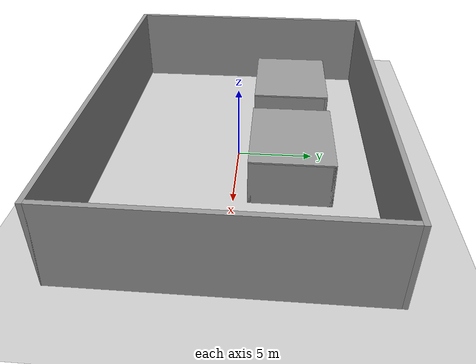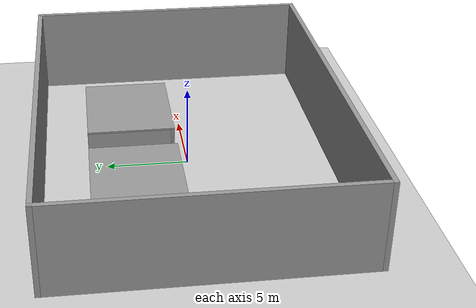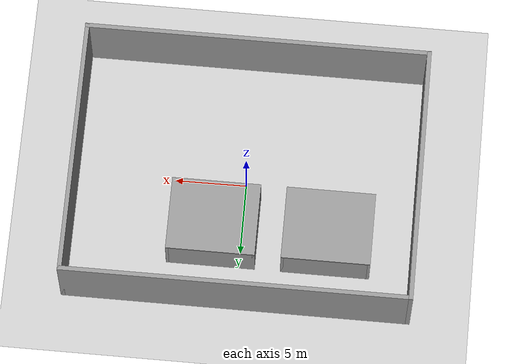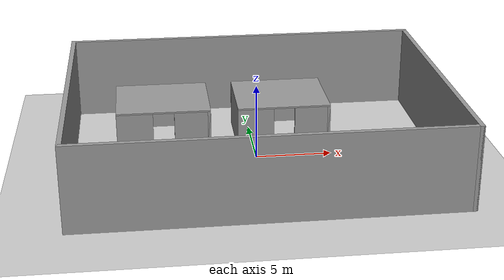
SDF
<sdf version="1.6">
 <world name="slam_world">
  <physics type="ode">
   <max_step_size>0.001</max_step_size>
   <real_time_factor>1.0</real_time_factor>
   <real_time_update_rate>1000.0</real_time_update_rate>
  </physics>
  <scene>
   <ambient>0.6 0.6 0.6 1.0</ambient>
   <background>0.1 0.1 0.1 1.0</background>
   <shadows>true</shadows>
  </scene>
  <include><uri>model://sun</uri></include>
  <include><uri>model://ground_plane</uri></include>
  <model name="room1_overhead_camera">
   <static>true</static>
   <pose>-6.0 3.5 3.0 0 1.5708 1.5708</pose>
   <link name="room1_camera_link">
    <sensor type="depth" name="room1_depth_camera">
     <always_on>true</always_on>
     <update_rate>30.0</update_rate>
     <camera>
      <horizontal_fov>2.0</horizontal_fov>
      <image><width>1280</width><height>720</height><format>R8G8B8</format></image>
      <clip><near>0.1</near><far>10.0</far></clip>
     </camera>
     <plugin name="room1_camera_controller" filename="libgazebo_ros_camera.so">
      <ros>
       <namespace>/overhead/room1</namespace>
       <remapping>image_raw:=image_raw</remapping>
       <remapping>depth/image_raw:=depth/image_raw</remapping>
       <remapping>points:=points</remapping>
      </ros>
      <camera_name>room1_camera</camera_name>
      <frame_name>room1_camera_link</frame_name>
      <min_depth>0.1</min_depth>
      <max_depth>10.0</max_depth>
     </plugin>
    </sensor>
   </link>
  </model>
  <model name="room2_overhead_camera">
   <static>true</static>
   <pose>2.0 3.5 3.0 0 1.5708 1.5708</pose>
   <link name="room2_camera_link">
    <sensor type="depth" name="room2_depth_camera">
     <always_on>true</always_on>
     <update_rate>30.0</update_rate>
     <camera>
      <horizontal_fov>2.0</horizontal_fov>
      <image><width>1280</width><height>720</height><format>R8G8B8</format></image>
      <clip><near>0.1</near><far>10.0</far></clip>
     </camera>
     <plugin name="room2_camera_controller" filename="libgazebo_ros_camera.so">
      <ros>
       <namespace>/overhead/room2</namespace>
       <remapping>image_raw:=image_raw</remapping>
       <remapping>depth/image_raw:=depth/image_raw</remapping>
       <remapping>points:=points</remapping>
      </ros>
      <camera_name>room2_camera</camera_name>
      <frame_name>room2_camera_link</frame_name>
      <min_depth>0.1</min_depth>
      <max_depth>10.0</max_depth>
     </plugin>
    </sensor>
   </link>
  </model>
  <model name="warehouse_outer_walls">
   <static>true</static>
   <link name="wall_north">
    <pose>0.0 9.0 2.75 0 0 0</pose>
    <collision name="col"><geometry><box><size>24.3 0.3 5.5</size></box></geometry></collision>
    <visual name="vis">
     <geometry><box><size>24.3 0.3 5.5</size></box></geometry>
     <material>
      <script><uri>file://media/materials/scripts/gazebo.material</uri><name>Gazebo/Grey</name></script>
     </material>
    </visual>
   </link>
   <link name="wall_south">
    <pose>0.0 -9.0 2.75 0 0 0</pose>
    <collision name="col"><geometry><box><size>24.3 0.3 5.5</size></box></geometry></collision>
    <visual name="vis">
     <geometry><box><size>24.3 0.3 5.5</size></box></geometry>
     <material>
      <script><uri>file://media/materials/scripts/gazebo.material</uri><name>Gazebo/Grey</name></script>
     </material>
    </visual>
   </link>
   <link name="wall_west">
    <pose>-12.0 0.0 2.75 0 0 0</pose>
    <collision name="col"><geometry><box><size>0.3 18.3 5.5</size></box></geometry></collision>
    <visual name="vis">
     <geometry><box><size>0.3 18.3 5.5</size></box></geometry>
     <material>
      <script><uri>file://media/materials/scripts/gazebo.material</uri><name>Gazebo/Grey</name></script>
     </material>
    </visual>
   </link>
   <link name="wall_east">
    <pose>12.0 0.0 2.75 0 0 0</pose>
    <collision name="col"><geometry><box><size>0.3 18.3 5.5</size></box></geometry></collision>
    <visual name="vis">
     <geometry><box><size>0.3 18.3 5.5</size></box></geometry>
     <material>
      <script><uri>file://media/materials/scripts/gazebo.material</uri><name>Gazebo/Grey</name></script>
     </material>
    </visual>
   </link>
  </model>
  <model name="room1_structure">
   <static>true</static>
   <link name="r1_roof">
    <pose>-6.0 3.5 3.05 0 0 0</pose>
    <collision name="c"><geometry><box><size>6.2 5.2 0.1</size></box></geometry></collision>
    <visual name="v">
     <geometry><box><size>6.2 5.2 0.1</size></box></geometry>
     <material>
      <script><uri>file://media/materials/scripts/gazebo.material</uri><name>Gazebo/Grey</name></script>
     </material>
    </visual>
   </link>
   <link name="r1_back">
    <pose>-6.0 6.0 1.5 0 0 0</pose>
    <collision name="c"><geometry><box><size>6.2 0.2 3.0</size></box></geometry></collision>
    <visual name="v">
     <geometry><box><size>6.2 0.2 3.0</size></box></geometry>
     <material>
      <script><uri>file://media/materials/scripts/gazebo.material</uri><name>Gazebo/Grey</name></script>
     </material>
    </visual>
   </link>
   <link name="r1_left">
    <pose>-9.0 3.5 1.5 0 0 0</pose>
    <collision name="c"><geometry><box><size>0.2 5.2 3.0</size></box></geometry></collision>
    <visual name="v">
     <geometry><box><size>0.2 5.2 3.0</size></box></geometry>
     <material>
      <script><uri>file://media/materials/scripts/gazebo.material</uri><name>Gazebo/Grey</name></script>
     </material>
    </visual>
   </link>
   <link name="r1_right">
    <pose>-3.0 3.5 1.5 0 0 0</pose>
    <collision name="c"><geometry><box><size>0.2 5.2 3.0</size></box></geometry></collision>
    <visual name="v">
     <geometry><box><size>0.2 5.2 3.0</size></box></geometry>
     <material>
      <script><uri>file://media/materials/scripts/gazebo.material</uri><name>Gazebo/Grey</name></script>
     </material>
    </visual>
   </link>
   <link name="r1_front_left">
    <pose>-7.9 1.0 1.5 0 0 0</pose>
    <collision name="c"><geometry><box><size>2.4 0.2 3.0</size></box></geometry></collision>
    <visual name="v">
     <geometry><box><size>2.4 0.2 3.0</size></box></geometry>
     <material>
      <script><uri>file://media/materials/scripts/gazebo.material</uri><name>Gazebo/Grey</name></script>
     </material>
    </visual>
   </link>
   <link name="r1_front_right">
    <pose>-4.1 1.0 1.5 0 0 0</pose>
    <collision name="c"><geometry><box><size>2.4 0.2 3.0</size></box></geometry></collision>
    <visual name="v">
     <geometry><box><size>2.4 0.2 3.0</size></box></geometry>
     <material>
      <script><uri>file://media/materials/scripts/gazebo.material</uri><name>Gazebo/Grey</name></script>
     </material>
    </visual>
   </link>
  </model>
  <model name="room2_structure">
   <static>true</static>
   <link name="r2_roof">
    <pose>2.0 3.5 3.05 0 0 0</pose>
    <collision name="c"><geometry><box><size>6.2 5.2 0.1</size></box></geometry></collision>
    <visual name="v">
     <geometry><box><size>6.2 5.2 0.1</size></box></geometry>
     <material>
      <script><uri>file://media/materials/scripts/gazebo.material</uri><name>Gazebo/Grey</name></script>
     </material>
    </visual>
   </link>
   <link name="r2_back">
    <pose>2.0 6.0 1.5 0 0 0</pose>
    <collision name="c"><geometry><box><size>6.2 0.2 3.0</size></box></geometry></collision>
    <visual name="v">
     <geometry><box><size>6.2 0.2 3.0</size></box></geometry>
     <material>
      <script><uri>file://media/materials/scripts/gazebo.material</uri><name>Gazebo/Grey</name></script>
     </material>
    </visual>
   </link>
   <link name="r2_left">
    <pose>-1.0 3.5 1.5 0 0 0</pose>
    <collision name="c"><geometry><box><size>0.2 5.2 3.0</size></box></geometry></collision>
    <visual name="v">
     <geometry><box><size>0.2 5.2 3.0</size></box></geometry>
     <material>
      <script><uri>file://media/materials/scripts/gazebo.material</uri><name>Gazebo/Grey</name></script>
     </material>
    </visual>
   </link>
   <link name="r2_right">
    <pose>5.0 3.5 1.5 0 0 0</pose>
    <collision name="c"><geometry><box><size>0.2 5.2 3.0</size></box></geometry></collision>
    <visual name="v">
     <geometry><box><size>0.2 5.2 3.0</size></box></geometry>
     <material>
      <script><uri>file://media/materials/scripts/gazebo.material</uri><name>Gazebo/Grey</name></script>
     </material>
    </visual>
   </link>
   <link name="r2_front_left">
    <pose>0.1 1.0 1.5 0 0 0</pose>
    <collision name="c"><geometry><box><size>2.4 0.2 3.0</size></box></geometry></collision>
    <visual name="v">
     <geometry><box><size>2.4 0.2 3.0</size></box></geometry>
     <material>
      <script><uri>file://media/materials/scripts/gazebo.material</uri><name>Gazebo/Grey</name></script>
     </material>
    </visual>
   </link>
   <link name="r2_front_right">
    <pose>3.9 1.0 1.5 0 0 0</pose>
    <collision name="c"><geometry><box><size>2.4 0.2 3.0</size></box></geometry></collision>
    <visual name="v">
     <geometry><box><size>2.4 0.2 3.0</size></box></geometry>
     <material>
      <script><uri>file://media/materials/scripts/gazebo.material</uri><name>Gazebo/Grey</name></script>
     </material>
    </visual>
   </link>
  </model>
 </world>
</sdf>
